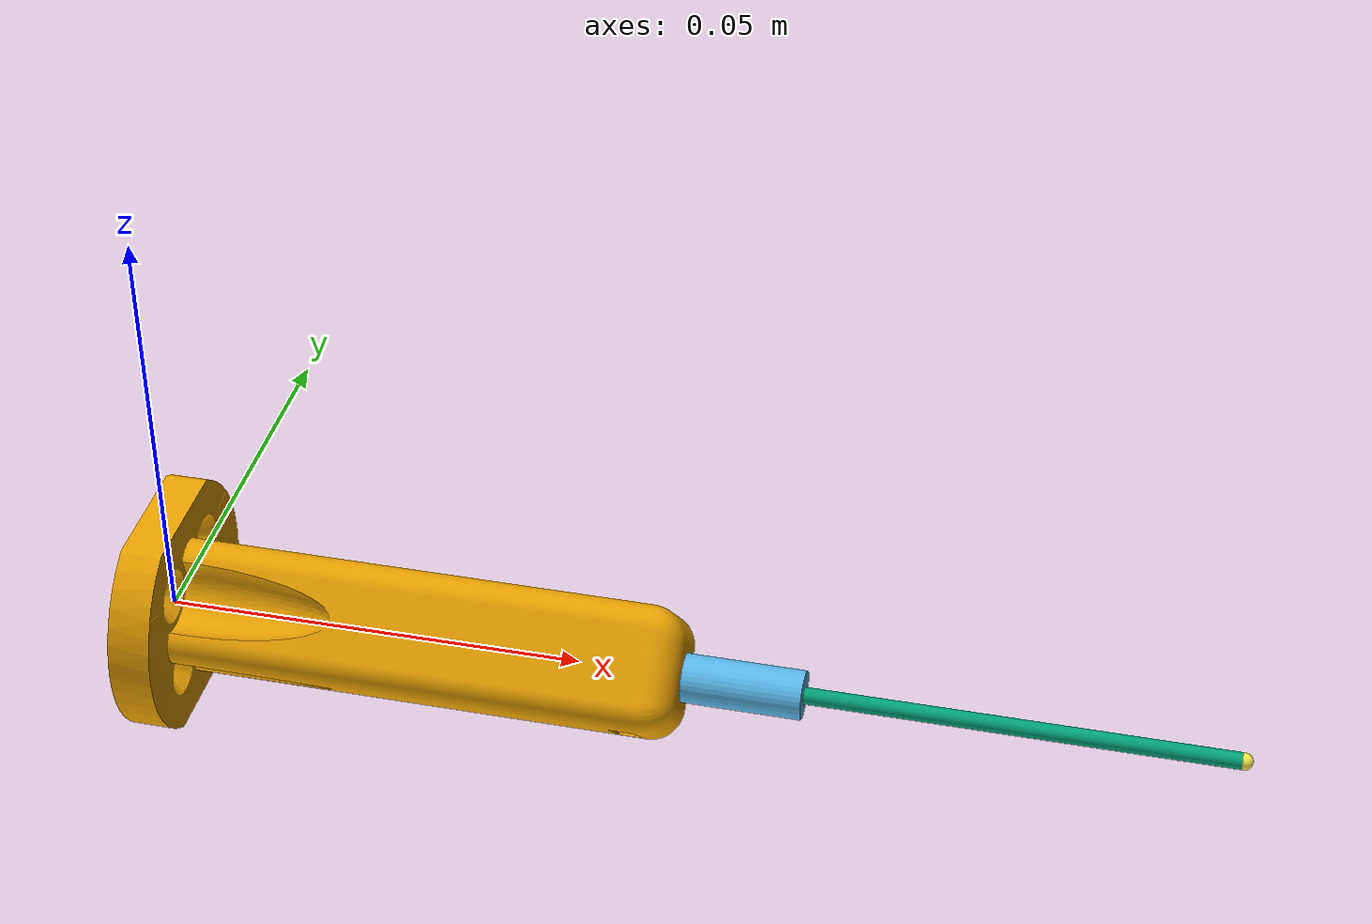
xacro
<?xml version="1.0"?>
<robot name="meca500_needle_holder" xmlns:xacro="http://www.ros.org/wiki/xacro">
    <!-- Base Link: Needle Holder -->
    <link name="needle_holder">
        <visual>
            <origin rpy="0 0 0" xyz="0 0 0"/>
            <geometry>
                <mesh filename="package://mecademic_description/meshes/meca500_needle_holder_001_scaled.dae" />
            </geometry>
        </visual>
        <collision>
            <origin rpy="0 0 0" xyz="0 0 0"/>
            <geometry>
                <mesh filename="package://mecademic_description/meshes/meca500_needle_holder_001_scaled.stl" />
            </geometry>
        </collision>
    </link>

    <!-- Joint: Connecting the Needle to the Needle Holder Pin -->
    <joint name="holder_to_base" type="fixed">
        <parent link="needle_holder"/>
        <child link="needle_base"/>
        <origin xyz="-0.005 0 0" rpy="0 0 0"/>
    </joint>

    <!-- New Link: Base Needle -->
    <link name="needle_base">
        <visual>
            <origin rpy="0 0 0" xyz="0 0 0"/>
            <geometry>
                <mesh filename="package://mecademic_description/meshes/needle_base.dae"/>
            </geometry>
        </visual>
        <collision>
            <origin rpy="0 0 0" xyz="0 0 0"/>
            <geometry>
                <mesh filename="package://mecademic_description/meshes/needle_base.stl"/>
            </geometry>
        </collision>
    </link>

    <!-- Joint: Connecting the Needle to the Needle Holder Pin -->
    <joint name="base_to_needle" type="fixed">
        <parent link="needle_base"/>
        <child link="needle"/>
        <origin xyz="0 0 0" rpy="0 0 0"/>
    </joint>

    <!-- New Link: Needle -->
    <link name="needle">
        <visual>
            <origin rpy="0 0 0" xyz="0 0 0"/>
            <geometry>
                <mesh filename="package://mecademic_description/meshes/needle.dae"/>
            </geometry>
        </visual>
        <collision>
            <origin rpy="0 0 0" xyz="0 0 0"/>
            <geometry>
                <mesh filename="package://mecademic_description/meshes/needle.stl"/>
            </geometry>
        </collision>
    </link>

    <!-- Joint: Connecting the Needle to the Needle Tip -->
    <joint name="needle_to_tip" type="fixed">
        <parent link="needle"/>
        <child link="needle_tip"/>
        <origin xyz="0.132 0 0" rpy="0 0 0"/>
    </joint>

    <link name="needle_tip">
        <visual>
            <origin xyz="0 0 0" rpy="0 0 0"/>
            <geometry>
                <sphere radius = ".001" />
            </geometry>
        </visual>
        <collision>
            <origin xyz="0 0 0" rpy="0 0 0"/>
            <geometry>
                <sphere radius = ".001" />
            </geometry>
        </collision>
    </link>

</robot>
